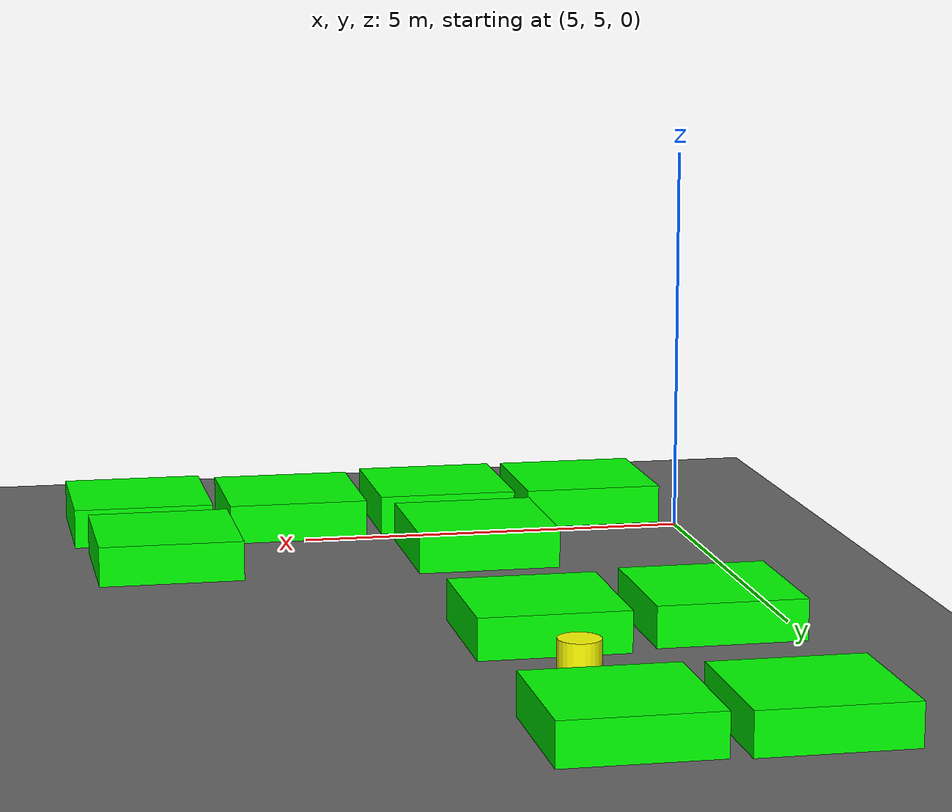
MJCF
<mujoco model="lvl5_corridor_obs10_dlong_depth2_seed2088">
    <compiler angle="degree" coordinate="local" inertiafromgeom="true"/>
    <option integrator="RK4" timestep="0.01"/>

    <asset>
        <texture builtin="gradient" height="100" rgb1="0.6 0.8 1" rgb2="0 0 0" type="skybox" width="100"/>
        <texture name="floor_texture" type="2d" builtin="checker" width="100" height="100" rgb1="0 0 0" rgb2="0.8 0.8 0.8"/>
        <material name="MatPlane" reflectance="0.5" shininess="1" specular="1" texrepeat="10 10" texture="floor_texture"/>
    </asset>

    <!-- Excluding the contact between the agent and the goal, and the agent and the floor -->
    <contact>
        <exclude body1="agent" body2="goal"/>
        <exclude body1 = "agent" body2 = "floor"/>
    </contact>

    <extension>
        <plugin plugin = "mujoco.pid">
            <instance name = "pid1">
                <config key="kp" value="2"/>
                <config key="ki" value="0"/>
                <config key="kd" value="55"/>
            </instance>
        </plugin>
    </extension>

    <worldbody>
        <light cutoff="100" diffuse="1 1 1" dir="-0 0 -1.3" directional="true" exponent="1" pos="0 0 1.3" specular=".1 .1 .1"/>
        <body name="floor" pos="0 0 0">
            <geom name="floor_geom" type="plane" size="20 20 0.1" material="MatPlane"/>
        </body>

                <body name="goal" pos="0.0000 0.0000 0">
            <geom name="goal_geom" type="plane" size="0.5 0.5 1" pos="0 0 0" rgba="1 0 0 1"/>
        </body>

                <body name="agent" pos="8.0000 12.0000 0.250">
            <joint name="j1" type="slide" axis ="1 0 0 "/>
            <joint name="j2" type="slide" axis ="0 1 0 "/>
            <geom name="agent_geom" type="cylinder" size="0.25 0.25 0.250" rgba="1 1 0 1"/>
        </body>

        <body name="obstacle1" pos="6.0143 14.0396 0.250">  <geom name="obstacle1_geom" type="box" size="0.9000 0.9000 0.250" rgba="0 1 0 1"/></body>
        <body name="obstacle2" pos="8.0463 14.0019 0.250">  <geom name="obstacle2_geom" type="box" size="0.9000 0.9000 0.250" rgba="0 1 0 1"/></body>
        <body name="obstacle3" pos="5.9205 9.9631 0.250">  <geom name="obstacle3_geom" type="box" size="0.9000 0.9000 0.250" rgba="0 1 0 1"/></body>
        <body name="obstacle4" pos="8.0337 10.0931 0.250">  <geom name="obstacle4_geom" type="box" size="0.9000 0.9000 0.250" rgba="0 1 0 1"/></body>
        <body name="obstacle5" pos="7.9477 6.0872 0.250">  <geom name="obstacle5_geom" type="box" size="0.9000 0.9000 0.250" rgba="0 1 0 1"/></body>
        <body name="obstacle6" pos="11.9451 6.0158 0.250">  <geom name="obstacle6_geom" type="box" size="0.9000 0.9000 0.250" rgba="0 1 0 1"/></body>
        <body name="obstacle7" pos="6.0790 3.9276 0.250">  <geom name="obstacle7_geom" type="box" size="0.9000 0.9000 0.250" rgba="0 1 0 1"/></body>
        <body name="obstacle8" pos="8.0634 3.9156 0.250">  <geom name="obstacle8_geom" type="box" size="0.9000 0.9000 0.250" rgba="0 1 0 1"/></body>
        <body name="obstacle9" pos="10.0896 4.0893 0.250">  <geom name="obstacle9_geom" type="box" size="0.9000 0.9000 0.250" rgba="0 1 0 1"/></body>
        <body name="obstacle10" pos="12.0997 3.9497 0.250">  <geom name="obstacle10_geom" type="box" size="0.9000 0.9000 0.250" rgba="0 1 0 1"/></body>

    </worldbody>

    <sensor>
<!-- SENSORS -->

        <distance name="dist1" geom1="agent_geom" geom2="obstacle1_geom" cutoff="1.5"/>
        <distance name="dist2" geom1="agent_geom" geom2="obstacle2_geom" cutoff="1.5"/>
        <distance name="dist3" geom1="agent_geom" geom2="obstacle3_geom" cutoff="1.5"/>
        <distance name="dist4" geom1="agent_geom" geom2="obstacle4_geom" cutoff="1.5"/>
        <distance name="dist5" geom1="agent_geom" geom2="obstacle5_geom" cutoff="1.5"/>
        <distance name="dist6" geom1="agent_geom" geom2="obstacle6_geom" cutoff="1.5"/>
        <distance name="dist7" geom1="agent_geom" geom2="obstacle7_geom" cutoff="1.5"/>
        <distance name="dist8" geom1="agent_geom" geom2="obstacle8_geom" cutoff="1.5"/>
        <distance name="dist9" geom1="agent_geom" geom2="obstacle9_geom" cutoff="1.5"/>
        <distance name="dist10" geom1="agent_geom" geom2="obstacle10_geom" cutoff="1.5"/>
</sensor>

    <actuator>
        <plugin joint="j1" plugin="mujoco.pid" instance="pid1" />
        <plugin joint="j2" plugin="mujoco.pid" instance="pid1"/>
    </actuator>
</mujoco>
